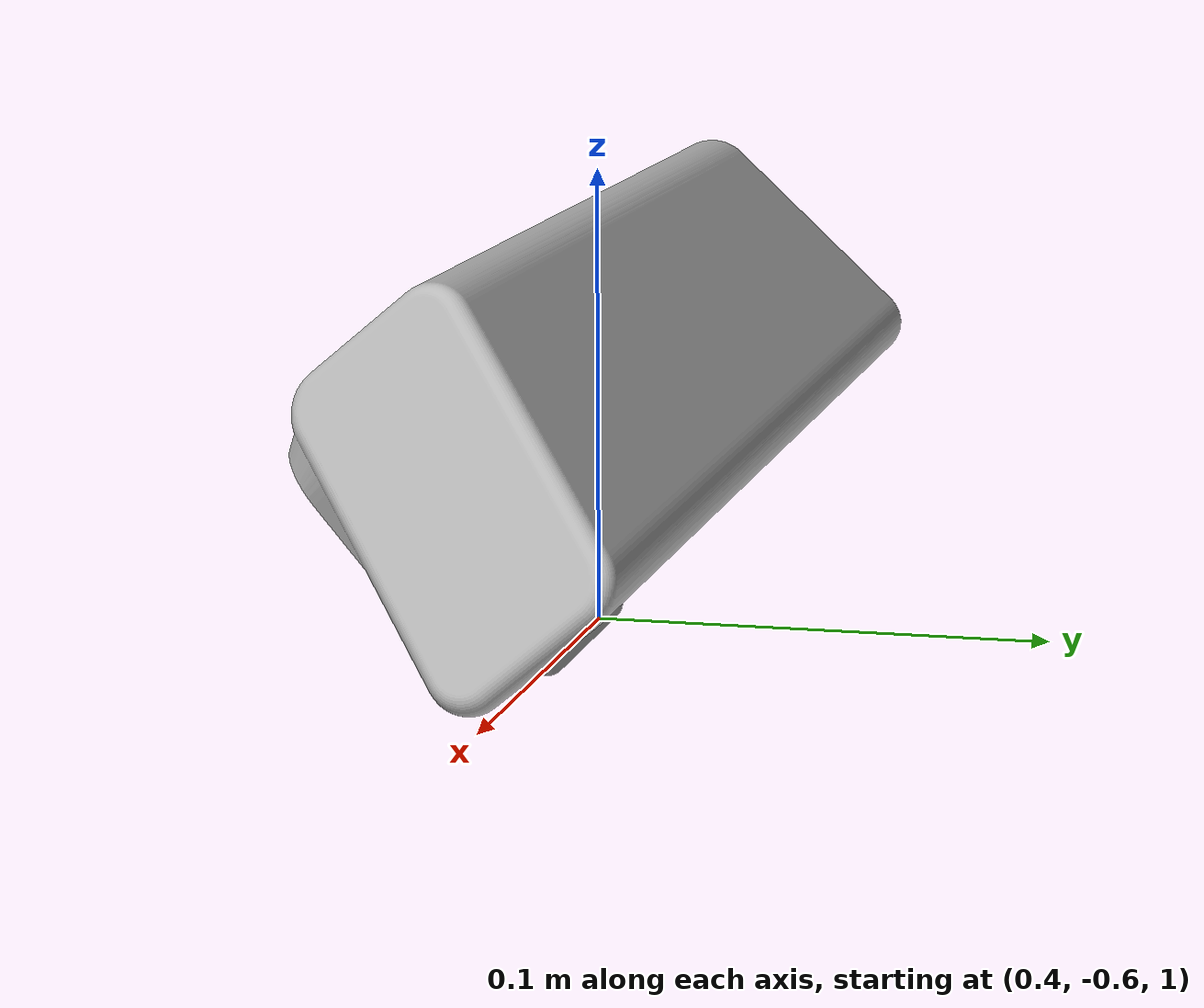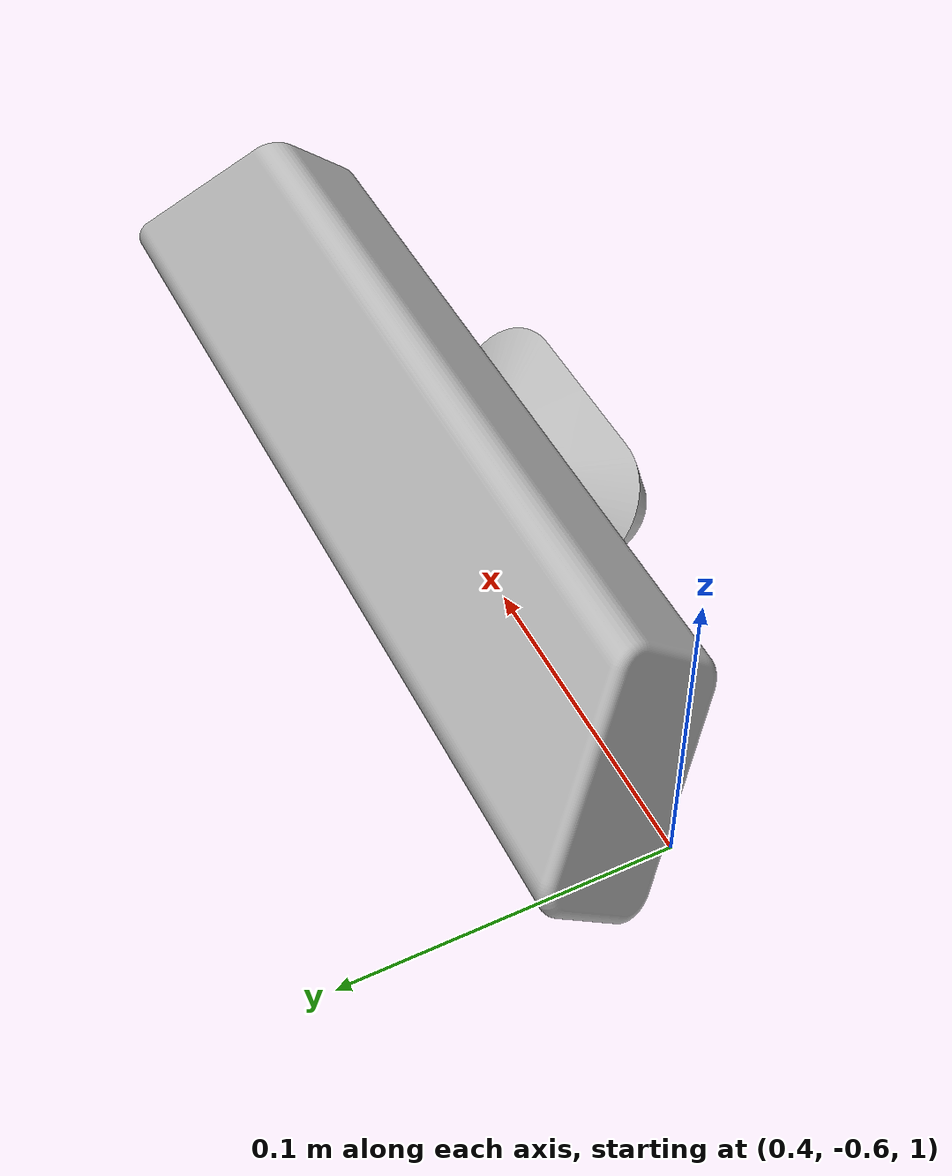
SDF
<?xml version="1.0"?>
<sdf version="1.4">
  <model name="kinect_ros">
    <link name="link">
      <gravity>false</gravity>
      <pose>0.5 -0.55 1.05 0 0.8722 1.57</pose>

      <inertial>
        <mass>0.1</mass>
      </inertial>

      <collision name="collision">
        <geometry>
          <box>
            <size>0.073000 0.276000 0.072000</size>
          </box>
        </geometry>
      </collision>
      <visual name="visual">
        <geometry>
          <mesh>
            <uri>model://kinect/meshes/kinect.dae</uri>
          </mesh>
        </geometry>
      </visual>
    </link>

    <gazebo reference="link">
      <sensor name="camera" type="depth">
        <update_rate>20</update_rate>
        <visualize>1</visualize>
        <always_on>1</always_on>
        <camera>
          <horizontal_fov>1.047198</horizontal_fov>
          <image>
            <width>640</width>
            <height>480</height>
            <format>R8G8B8</format>
          </image>
          <clip>
            <near>0.05</near>
            <far>3</far>
          </clip>
        </camera>
        <plugin name="camera_plugin" filename="libgazebo_ros_openni_kinect.so">
          <baseline>0.2</baseline>
          <alwaysOn>true</alwaysOn>
          <updateRate>0.0</updateRate>
          <cameraName>camera_ir</cameraName>
          <imageTopicName>/camera/depth/image_raw</imageTopicName>
          <cameraInfoTopicName>/camera/depth/camera_info</cameraInfoTopicName>
          <depthImageTopicName>/camera/depth/image_raw</depthImageTopicName>
          <depthImageInfoTopicName>/camera/depth/camera_info</depthImageInfoTopicName>
          <pointCloudTopicName>/camera/depth/points</pointCloudTopicName>
          <frameName>camera_link</frameName>
          <pointCloudCutoff>0.05</pointCloudCutoff>
          <distortionK1>0</distortionK1>
          <distortionK2>0</distortionK2>
          <distortionK3>0</distortionK3>
          <distortionT1>0</distortionT1>
          <distortionT2>0</distortionT2>
          <CxPrime>0</CxPrime>
          <Cx>0</Cx>
          <Cy>0</Cy>
          <focalLength>0</focalLength>
          <hackBaseline>0</hackBaseline>
        </plugin>
      </sensor>
    </gazebo>
    <static>true</static>
  </model>
</sdf>
